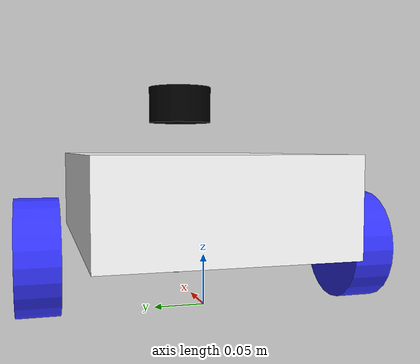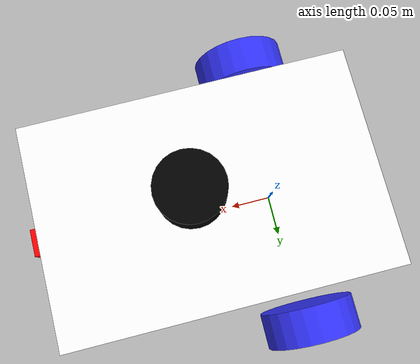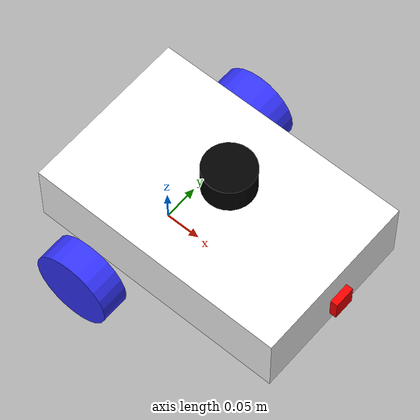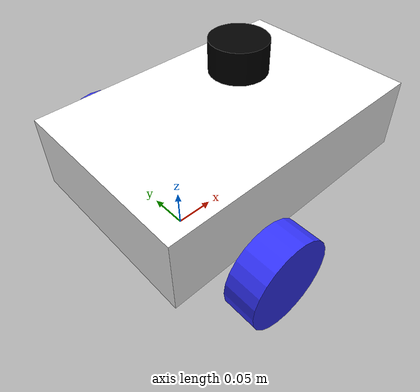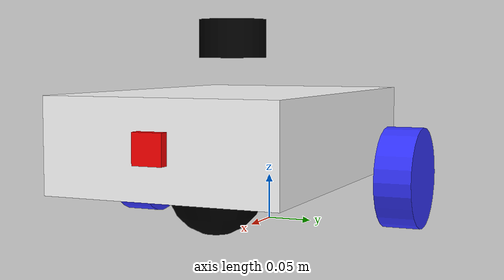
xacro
<?xml version="1.0"?>
<robot xmlns:xacro="http://www.ros.org/wiki/xacro" name="robot">
    <xacro:arg name = "use_ros2_control" default="true"/>
    <xacro:arg name = "sim_mode" default="false"/>

    <xacro:include filename="robot_core.xacro" />

    <xacro:if value="$(arg use_ros2_control)">
        <xacro:include filename="ros2_control.xacro" />
    </xacro:if>

     <xacro:unless value="$(arg use_ros2_control)">
      <xacro:include filename="gazebo_control.xacro" />
     </xacro:unless>

    <xacro:include filename="lidar.xacro" />
    <xacro:include filename="camera.xacro" />

</robot>

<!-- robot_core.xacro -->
<robot xmlns:xacro="http://www.ros.org/wiki/xacro" >

    <xacro:include filename="inertial_macros.xacro"/>

    <!-- Wheel parameters -->
    <xacro:property name="wheel_diameter" value="0.11"/> <!-- 11.0 cm -->
    <xacro:property name="wheel_separation" value="0.32"/> <!-- 32.0 cm -->
    <xacro:property name="wheel_radius" value="${wheel_diameter/2}"/>

    <material name="white">
        <color rgba="1 1 1 1" />
    </material>

    <material name="orange">
        <color rgba="1 0.3 0.1 1"/>
    </material>

    <material name="blue">
        <color rgba="0.2 0.2 1 1"/>
    </material>

    <material name="black">
        <color rgba="0 0 0 1"/>
    </material>

    <material name="red">
        <color rgba="1 0 0 1"/>
    </material>

    <!-- BASE FOOTPRINT LINK -->
    <link name="base_footprint">
    </link>

    <!-- BASE LINK -->
    <joint name="base_footprint_joint" type="fixed">
        <parent link="base_footprint"/>
        <child link="base_link"/>
        <origin xyz="0 0 ${wheel_radius}"/>  <!-- Lift the robot by wheel radius -->
    </joint>

    <!-- This is the actual physical base of the robot -->
    <link name="base_link">
        <!-- Remove visual or make it a small reference point -->
        <visual>
            <geometry>
                <sphere radius="0.01"/>  <!-- Small sphere as reference -->
            </geometry>
            <material name="red"/>
        </visual>
        <!-- Remove any collision geometry from base_link -->
        <!-- The chassis will handle all collisions -->
    </link>

    <!-- CHASSIS LINK -->
    <joint name="chassis_joint" type="fixed">
        <parent link="base_link"/>
        <child link="chassis"/>
        <origin xyz="-0.1 0 0"/>
    </joint>

    <link name="chassis">
        <visual>
            <origin xyz="0.1825 0 0.0475"/>
            <geometry>
                <box size="0.365 0.24 0.095"/>
            </geometry>
            <material name="white"/>
        </visual>
        <collision>
            <origin xyz="0.1825 0 0.0475"/>
            <geometry>
                <box size="0.365 0.24 0.095"/>
            </geometry>
        </collision>
        <xacro:inertial_box mass="0.5" x="0.365" y="0.24" z="0.095">
            <origin xyz="0.1825 0 0.0475" rpy="0 0 0"/>
        </xacro:inertial_box>
    </link>

    <gazebo reference="chassis">
        <material>Gazebo/White</material>
    </gazebo>

    <!-- LEFT WHEEL LINK -->
    <joint name="left_wheel_joint" type="continuous">
        <parent link="base_link"/>
        <child link="left_wheel"/>
        <origin xyz="0 ${wheel_separation/2} 0" rpy="-${pi/2} 0 0" />
        <axis xyz="0 0 1"/>
    </joint>

    <link name="left_wheel">
        <visual>
            <geometry>
                <cylinder radius="${wheel_radius}" length="0.04"/>
            </geometry>
            <material name="blue"/>
        </visual>
        <collision>
            <geometry>
                <cylinder radius="${wheel_radius}" length="0.04"/>
            </geometry>
        </collision>
        <xacro:inertial_cylinder mass="0.1" length="0.04" radius="${wheel_radius}">
            <origin xyz="0 0 0" rpy="0 0 0"/>
        </xacro:inertial_cylinder>
    </link>

    <gazebo reference="left_wheel">
        <material>Gazebo/Blue</material>
    </gazebo>

    <!-- RIGHT WHEEL LINK -->
    <joint name="right_wheel_joint" type="continuous">
        <parent link="base_link"/>
        <child link="right_wheel"/>
        <origin xyz="0 -${wheel_separation/2} 0" rpy="${pi/2} 0 0" />
        <axis xyz="0 0 -1"/>
    </joint>

    <link name="right_wheel">
        <visual>
            <geometry>
                <cylinder radius="${wheel_radius}" length="0.04"/>
            </geometry>
            <material name="blue"/>
        </visual>
        <collision>
            <geometry>
                <cylinder radius="${wheel_radius}" length="0.04"/>
            </geometry>
        </collision>
        <xacro:inertial_cylinder mass="0.1" length="0.04" radius="${wheel_radius}">
            <origin xyz="0 0 0" rpy="0 0 0"/>
        </xacro:inertial_cylinder>
    </link>

    <gazebo reference="right_wheel">
        <material>Gazebo/Blue</material>
    </gazebo>

    <!-- CASTER WHEEL LINK -->
    <joint name="caster_wheel_joint" type="fixed">
        <parent link="chassis"/>
        <child link="caster_wheel"/>
        <origin xyz="0.24 0 0"/>
    </joint>

    <link name="caster_wheel">
        <visual>
            <geometry>
                <sphere radius="0.05"/>
            </geometry>
            <material name="black"/>
        </visual>
        <collision>
            <geometry>
                <sphere radius="0.05"/>
            </geometry>
        </collision>
        <xacro:inertial_sphere mass="0.1" radius="0.05">
            <origin xyz="0 0 0" rpy="0 0 0"/>
        </xacro:inertial_sphere>
    </link>

    <gazebo reference="caster_wheel">
        <material>Gazebo/Black</material>
        <mu1 value="0.001"/>
        <mu2 value="0.001"/>
    </gazebo>

</robot>

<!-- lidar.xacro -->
<robot xmlns:xacro="http://www.ros.org/wiki/xacro">

  <!-- LIDAR Visual and Physical Properties -->
  <link name="laser_frame">
    <visual>
      <origin xyz="0 0 0" rpy="0 0 0"/>
      <geometry>
        <cylinder radius="0.035" length="0.040" />
      </geometry>
      <material name="black" />
    </visual>
    <collision>
      <origin xyz="0 0 0" rpy="0 0 0"/>
      <geometry>
        <cylinder radius="0.035" length="0.040" />
      </geometry>
    </collision>
    <inertial>
      <origin xyz="0 0 0" rpy="0 0 0"/>
      <mass value="0.1"/>
      <inertia ixx="0.000084" ixy="0.0" ixz="0.0" iyy="0.000084" iyz="0.0" izz="0.0000002"/>
    </inertial>
  </link>

  <!-- Mount LiDAR higher to avoid collision with chassis -->
  <joint name="lidar_joint" type="fixed">
    <parent link="base_link" />
    <child link="laser_frame" />
    <!-- Raised from 0.105 to 0.15 to clear the chassis -->
    <origin xyz="0.1 0 0.15" rpy="0 0 0" />
  </joint>

  <!-- RPLIDAR A1 Gazebo Configuration -->
  <gazebo reference="laser_frame">
    <material>Gazebo/Black</material>
    <sensor name="laser" type="ray">
      <pose>0 0 0 0 0 0</pose>
      <visualize>true</visualize>
      <update_rate>5.5</update_rate>
      <ray>
        <scan>
          <horizontal>
            <samples>360</samples>
            <resolution>1</resolution>
            <min_angle>-3.14159</min_angle>
            <max_angle>3.14159</max_angle>
          </horizontal>
        </scan>
        <range>
          <min>0.15</min>
          <max>12.0</max>
          <resolution>0.01</resolution>
        </range>
        <noise>
          <type>gaussian</type>
          <mean>0.0</mean>
          <stddev>0.01</stddev>
        </noise>
      </ray>
      <plugin name="gazebo_ros_ray_sensor" filename="libgazebo_ros_ray_sensor.so">
        <ros>
          <namespace>/</namespace>
          <remapping>~/out:=scan</remapping>
        </ros>
        <output_type>sensor_msgs/LaserScan</output_type>
        <frame_name>laser_frame</frame_name>
      </plugin>
    </sensor>
  </gazebo>

</robot>

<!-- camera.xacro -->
<robot xmlns:xacro="http://www.ros.org/wiki/xacro">

<joint name="camera_joint" type="fixed">
        <parent link="base_link" />
        <child link="camera_link" />
        <origin xyz="0.275 0 0.05" rpy="0 0 0" />
    </joint>

    <joint name="camera_optical_joint" type="fixed">
        <parent link="camera_link" />
        <child link="camera_link_optical" />
        <origin xyz="0 0 0 " rpy="${-pi/2} 0 ${-pi/2}" />
    </joint>

    <link name="camera_link">
        <visual>
            <geometry>
                <box size = "0.010 0.03 0.03" />
            </geometry>
            <material name="red" />
        </visual>
    </link>

    <link name="camera_link_optical">
    </link>

   <gazebo reference="camera_link">
    <material>Gazebo/Red</material>

  <sensor name="camera" type="camera">

            <pose> 0 0 0 0 0 0 </pose>
            <visualize>true</visualize>
            <update_rate>10</update_rate>
            <camera>
                <horizontal_fov>1.089</horizontal_fov>
                <image>
                    <format>R8G8B8</format>
                    <width>640</width>
                    <height>480</height>
                </image>
                <clip>
                    <near>0.05</near>
                    <far>8.0</far>
                </clip>
            </camera>
            <plugin name="camera_controller" filename="libgazebo_ros_camera.so">
                <frame_name>camera_link_optical</frame_name>
            </plugin>
        </sensor>

</gazebo>

</robot>
